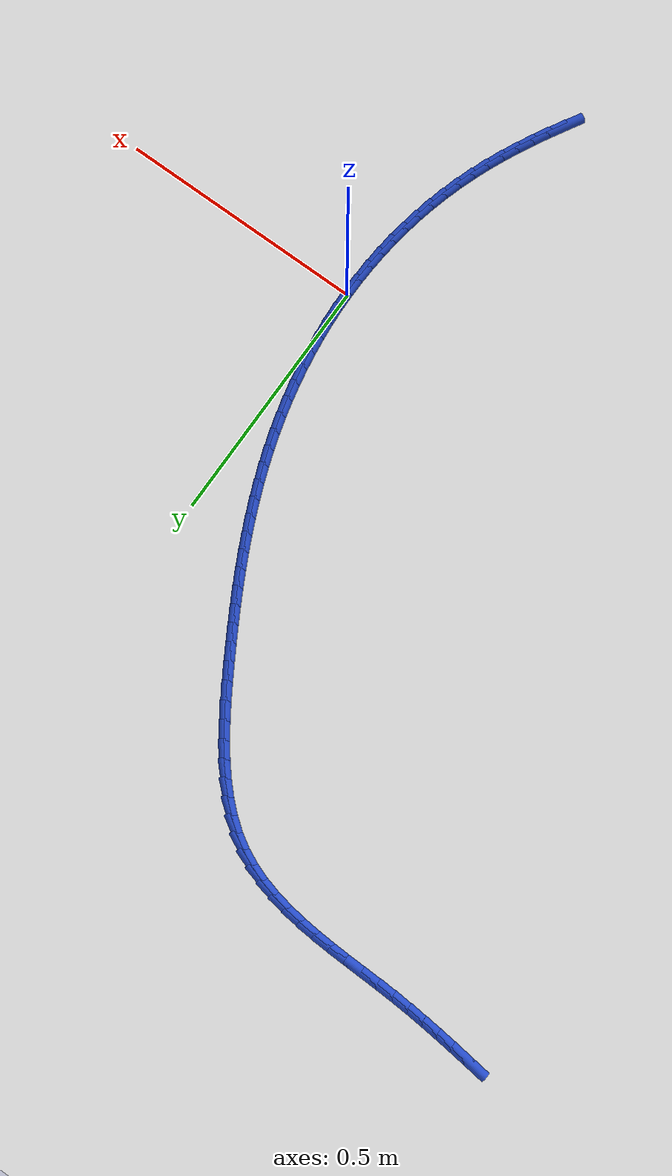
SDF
<sdf version="1.6">
 <world name="default">
  <model name="ground_plane">
   <static>1</static>
   <link name="link">
    <collision name="collision">
     <geometry><plane><normal>0 0 1</normal><size>100 100</size></plane></geometry>
     <surface><friction><ode><mu>100</mu><mu2>50</mu2></ode></friction></surface>
    </collision>
    <visual name="visual">
     <cast_shadows>0</cast_shadows>
     <geometry><plane><normal>0 0 1</normal><size>100 100</size></plane></geometry>
     <material>
      <script><uri>file://media/materials/scripts/gazebo.material</uri><name>Gazebo/WhiteGlow</name></script>
     </material>
    </visual>
   </link>
  </model>
  <model name="line">
   <link name="link_0">
    <pose>3.122502256758253e-17 1.3877787807814457e-17 0.01 0 1.57 -1.545253485342555</pose>
    <collision name="collision">
     <geometry><cylinder><radius>0.01</radius><length>0.08</length></cylinder></geometry>
    </collision>
    <visual name="visual">
     <material>
      <script><name>Gazebo/Blue</name><uri>file://media/materials/scripts/gazebo.material</uri></script>
     </material>
     <geometry><cylinder><radius>0.01</radius><length>0.08</length></cylinder></geometry>
    </visual>
   </link>
   <link name="link_1">
    <pose>-0.000865920485348824 0.03389333795629715 0.01 0 1.57 -1.5114779695106455</pose>
    <collision name="collision">
     <geometry><cylinder><radius>0.01</radius><length>0.08</length></cylinder></geometry>
    </collision>
    <visual name="visual">
     <material>
      <script><name>Gazebo/Blue</name><uri>file://media/materials/scripts/gazebo.material</uri></script>
     </material>
     <geometry><cylinder><radius>0.01</radius><length>0.08</length></cylinder></geometry>
    </visual>
   </link>
   <link name="link_2">
    <pose>-0.002876116298317968 0.06774183974791337 0.01 0 1.57 -1.4786294431413702</pose>
    <collision name="collision">
     <geometry><cylinder><radius>0.01</radius><length>0.08</length></cylinder></geometry>
    </collision>
    <visual name="visual">
     <material>
      <script><name>Gazebo/Blue</name><uri>file://media/materials/scripts/gazebo.material</uri></script>
     </material>
     <geometry><cylinder><radius>0.01</radius><length>0.08</length></cylinder></geometry>
    </visual>
   </link>
   <link name="link_3">
    <pose>-0.005996338600805709 0.10149997519014346 0.01 0 1.57 -1.4466398844303219</pose>
    <collision name="collision">
     <geometry><cylinder><radius>0.01</radius><length>0.08</length></cylinder></geometry>
    </collision>
    <visual name="visual">
     <material>
      <script><name>Gazebo/Blue</name><uri>file://media/materials/scripts/gazebo.material</uri></script>
     </material>
     <geometry><cylinder><radius>0.01</radius><length>0.08</length></cylinder></geometry>
    </visual>
   </link>
   <link name="link_4">
    <pose>-0.010192338554710334 0.13512221409828223 0.01 0 1.57 -1.4154375836928796</pose>
    <collision name="collision">
     <geometry><cylinder><radius>0.01</radius><length>0.08</length></cylinder></geometry>
    </collision>
    <visual name="visual">
     <material>
      <script><name>Gazebo/Blue</name><uri>file://media/materials/scripts/gazebo.material</uri></script>
     </material>
     <geometry><cylinder><radius>0.01</radius><length>0.08</length></cylinder></geometry>
    </visual>
   </link>
   <link name="link_5">
    <pose>-0.015429867321930139 0.16856302628762446 0.01 0 1.57 -1.3849478388736798</pose>
    <collision name="collision">
     <geometry><cylinder><radius>0.01</radius><length>0.08</length></cylinder></geometry>
    </collision>
    <visual name="visual">
     <material>
      <script><name>Gazebo/Blue</name><uri>file://media/materials/scripts/gazebo.material</uri></script>
     </material>
     <geometry><cylinder><radius>0.01</radius><length>0.08</length></cylinder></geometry>
    </visual>
   </link>
   <link name="link_6">
    <pose>-0.021674676064363414 0.20177688157346502 0.01 0 1.57 -1.355093450607874</pose>
    <collision name="collision">
     <geometry><cylinder><radius>0.01</radius><length>0.08</length></cylinder></geometry>
    </collision>
    <visual name="visual">
     <material>
      <script><name>Gazebo/Blue</name><uri>file://media/materials/scripts/gazebo.material</uri></script>
     </material>
     <geometry><cylinder><radius>0.01</radius><length>0.08</length></cylinder></geometry>
    </visual>
   </link>
   <link name="link_7">
    <pose>-0.028892515943908466 0.23471824977109862 0.01 0 1.57 -1.3257950326625307</pose>
    <collision name="collision">
     <geometry><cylinder><radius>0.01</radius><length>0.08</length></cylinder></geometry>
    </collision>
    <visual name="visual">
     <material>
      <script><name>Gazebo/Blue</name><uri>file://media/materials/scripts/gazebo.material</uri></script>
     </material>
     <geometry><cylinder><radius>0.01</radius><length>0.08</length></cylinder></geometry>
    </visual>
   </link>
   <link name="link_8">
    <pose>-0.03704913812246359 0.26734160069582014 0.01 0 1.57 -1.2969711532674613</pose>
    <collision name="collision">
     <geometry><cylinder><radius>0.01</radius><length>0.08</length></cylinder></geometry>
    </collision>
    <visual name="visual">
     <material>
      <script><name>Gazebo/Blue</name><uri>file://media/materials/scripts/gazebo.material</uri></script>
     </material>
     <geometry><cylinder><radius>0.01</radius><length>0.08</length></cylinder></geometry>
    </visual>
   </link>
   <link name="link_9">
    <pose>-0.046110293761927074 0.2996014041629243 0.01 0 1.57 -1.2685850275636994</pose>
    <collision name="collision">
     <geometry><cylinder><radius>0.01</radius><length>0.08</length></cylinder></geometry>
    </collision>
    <visual name="visual">
     <material>
      <script><name>Gazebo/Blue</name><uri>file://media/materials/scripts/gazebo.material</uri></script>
     </material>
     <geometry><cylinder><radius>0.01</radius><length>0.08</length></cylinder></geometry>
    </visual>
   </link>
   <link name="link_10">
    <pose>-0.05604174847999134 0.33145741190993566 0.01 0 1.57 -1.2410812943710086</pose>
    <collision name="collision">
     <geometry><cylinder><radius>0.01</radius><length>0.08</length></cylinder></geometry>
    </collision>
    <visual name="visual">
     <material>
      <script><name>Gazebo/Blue</name><uri>file://media/materials/scripts/gazebo.material</uri></script>
     </material>
     <geometry><cylinder><radius>0.01</radius><length>0.08</length></cylinder></geometry>
    </visual>
   </link>
   <link name="link_11">
    <pose>-0.06680941415166988 0.3629228158236591 0.01 0 1.57 -1.214839223027288</pose>
    <collision name="collision">
     <geometry><cylinder><radius>0.01</radius><length>0.08</length></cylinder></geometry>
    </collision>
    <visual name="visual">
     <material>
      <script><name>Gazebo/Blue</name><uri>file://media/materials/scripts/gazebo.material</uri></script>
     </material>
     <geometry><cylinder><radius>0.01</radius><length>0.08</length></cylinder></geometry>
    </visual>
   </link>
   <link name="link_12">
    <pose>-0.078379287599311 0.39404184622518174 0.01 0 1.57 -1.189977491767885</pose>
    <collision name="collision">
     <geometry><cylinder><radius>0.01</radius><length>0.08</length></cylinder></geometry>
    </collision>
    <visual name="visual">
     <material>
      <script><name>Gazebo/Blue</name><uri>file://media/materials/scripts/gazebo.material</uri></script>
     </material>
     <geometry><cylinder><radius>0.01</radius><length>0.08</length></cylinder></geometry>
    </visual>
   </link>
   <link name="link_13">
    <pose>-0.09071736669249278 0.42485911607708055 0.01 0 1.57 -1.1665934481925826</pose>
    <collision name="collision">
     <geometry><cylinder><radius>0.01</radius><length>0.08</length></cylinder></geometry>
    </collision>
    <visual name="visual">
     <material>
      <script><name>Gazebo/Blue</name><uri>file://media/materials/scripts/gazebo.material</uri></script>
     </material>
     <geometry><cylinder><radius>0.01</radius><length>0.08</length></cylinder></geometry>
    </visual>
   </link>
   <link name="link_14">
    <pose>-0.10378964930079335 0.45541923834193215 0.01 0 1.57 -1.1447663570972086</pose>
    <collision name="collision">
     <geometry><cylinder><radius>0.01</radius><length>0.08</length></cylinder></geometry>
    </collision>
    <visual name="visual">
     <material>
      <script><name>Gazebo/Blue</name><uri>file://media/materials/scripts/gazebo.material</uri></script>
     </material>
     <geometry><cylinder><radius>0.01</radius><length>0.08</length></cylinder></geometry>
    </visual>
   </link>
   <link name="link_15">
    <pose>-0.11756213329379074 0.48576682598231335 0.01 0 1.57 -1.1245578417099682</pose>
    <collision name="collision">
     <geometry><cylinder><radius>0.01</radius><length>0.08</length></cylinder></geometry>
    </collision>
    <visual name="visual">
     <material>
      <script><name>Gazebo/Blue</name><uri>file://media/materials/scripts/gazebo.material</uri></script>
     </material>
     <geometry><cylinder><radius>0.01</radius><length>0.08</length></cylinder></geometry>
    </visual>
   </link>
   <link name="link_16">
    <pose>-0.1320008165410631 0.515946491960801 0.01 0 1.57 -1.1060127861267237</pose>
    <collision name="collision">
     <geometry><cylinder><radius>0.01</radius><length>0.08</length></cylinder></geometry>
    </collision>
    <visual name="visual">
     <material>
      <script><name>Gazebo/Blue</name><uri>file://media/materials/scripts/gazebo.material</uri></script>
     </material>
     <geometry><cylinder><radius>0.01</radius><length>0.08</length></cylinder></geometry>
    </visual>
   </link>
   <link name="link_17">
    <pose>-0.14707169691218863 0.546002849239972 0.01 0 1.57 -1.0891605754471807</pose>
    <collision name="collision">
     <geometry><cylinder><radius>0.01</radius><length>0.08</length></cylinder></geometry>
    </collision>
    <visual name="visual">
     <material>
      <script><name>Gazebo/Blue</name><uri>file://media/materials/scripts/gazebo.material</uri></script>
     </material>
     <geometry><cylinder><radius>0.01</radius><length>0.08</length></cylinder></geometry>
    </visual>
   </link>
   <link name="link_18">
    <pose>-0.16274077227674524 0.5759805107824028 0.01 0 1.57 -1.074016553728089</pose>
    <collision name="collision">
     <geometry><cylinder><radius>0.01</radius><length>0.08</length></cylinder></geometry>
    </collision>
    <visual name="visual">
     <material>
      <script><name>Gazebo/Blue</name><uri>file://media/materials/scripts/gazebo.material</uri></script>
     </material>
     <geometry><cylinder><radius>0.01</radius><length>0.08</length></cylinder></geometry>
    </visual>
   </link>
   <link name="link_19">
    <pose>-0.17897404050431126 0.6059240895506708 0.01 0 1.57 -1.0605835921100564</pose>
    <collision name="collision">
     <geometry><cylinder><radius>0.01</radius><length>0.08</length></cylinder></geometry>
    </collision>
    <visual name="visual">
     <material>
      <script><name>Gazebo/Blue</name><uri>file://media/materials/scripts/gazebo.material</uri></script>
     </material>
     <geometry><cylinder><radius>0.01</radius><length>0.08</length></cylinder></geometry>
    </visual>
   </link>
   <link name="link_20">
    <pose>-0.19573749946446461 0.6358781985073524 0.01 0 1.57 -1.0488536769395178</pose>
    <collision name="collision">
     <geometry><cylinder><radius>0.01</radius><length>0.08</length></cylinder></geometry>
    </collision>
    <visual name="visual">
     <material>
      <script><name>Gazebo/Blue</name><uri>file://media/materials/scripts/gazebo.material</uri></script>
     </material>
     <geometry><cylinder><radius>0.01</radius><length>0.08</length></cylinder></geometry>
    </visual>
   </link>
   <link name="link_21">
    <pose>-0.2129971470267834 0.6658874506150242 0.01 0 1.57 -1.038809447378384</pose>
    <collision name="collision">
     <geometry><cylinder><radius>0.01</radius><length>0.08</length></cylinder></geometry>
    </collision>
    <visual name="visual">
     <material>
      <script><name>Gazebo/Blue</name><uri>file://media/materials/scripts/gazebo.material</uri></script>
     </material>
     <geometry><cylinder><radius>0.01</radius><length>0.08</length></cylinder></geometry>
    </visual>
   </link>
   <link name="link_22">
    <pose>-0.2307189810608459 0.6959964588362635 0.01 0 1.57 -1.0293825329552073</pose>
    <collision name="collision">
     <geometry><cylinder><radius>0.01</radius><length>0.08</length></cylinder></geometry>
    </collision>
    <visual name="visual">
     <material>
      <script><name>Gazebo/Blue</name><uri>file://media/materials/scripts/gazebo.material</uri></script>
     </material>
     <geometry><cylinder><radius>0.01</radius><length>0.08</length></cylinder></geometry>
    </visual>
   </link>
   <link name="link_23">
    <pose>-0.24888639960591855 0.7262073617972887 0.01 0 1.57 -1.0143932947088314</pose>
    <collision name="collision">
     <geometry><cylinder><radius>0.01</radius><length>0.08</length></cylinder></geometry>
    </collision>
    <visual name="visual">
     <material>
      <script><name>Gazebo/Blue</name><uri>file://media/materials/scripts/gazebo.material</uri></script>
     </material>
     <geometry><cylinder><radius>0.01</radius><length>0.08</length></cylinder></geometry>
    </visual>
   </link>
   <link name="link_24">
    <pose>-0.26758524409550394 0.7562722307248411 0.01 0 1.57 -0.991416461137278</pose>
    <collision name="collision">
     <geometry><cylinder><radius>0.01</radius><length>0.08</length></cylinder></geometry>
    </collision>
    <visual name="visual">
     <material>
      <script><name>Gazebo/Blue</name><uri>file://media/materials/scripts/gazebo.material</uri></script>
     </material>
     <geometry><cylinder><radius>0.01</radius><length>0.08</length></cylinder></geometry>
    </visual>
   </link>
   <link name="link_25">
    <pose>-0.2869387212680915 0.7858519270149226 0.01 0 1.57 -0.960007470973449</pose>
    <collision name="collision">
     <geometry><cylinder><radius>0.01</radius><length>0.08</length></cylinder></geometry>
    </collision>
    <visual name="visual">
     <material>
      <script><name>Gazebo/Blue</name><uri>file://media/materials/scripts/gazebo.material</uri></script>
     </material>
     <geometry><cylinder><radius>0.01</radius><length>0.08</length></cylinder></geometry>
    </visual>
   </link>
   <link name="link_26">
    <pose>-0.30707009237589394 0.8146071789939 0.01 0 1.57 -0.9194810791921506</pose>
    <collision name="collision">
     <geometry><cylinder><radius>0.01</radius><length>0.08</length></cylinder></geometry>
    </collision>
    <visual name="visual">
     <material>
      <script><name>Gazebo/Blue</name><uri>file://media/materials/scripts/gazebo.material</uri></script>
     </material>
     <geometry><cylinder><radius>0.01</radius><length>0.08</length></cylinder></geometry>
    </visual>
   </link>
   <link name="link_27">
    <pose>-0.328102618671124 0.8421987149881404 0.01 0 1.57 -0.8689412261048902</pose>
    <collision name="collision">
     <geometry><cylinder><radius>0.01</radius><length>0.08</length></cylinder></geometry>
    </collision>
    <visual name="visual">
     <material>
      <script><name>Gazebo/Blue</name><uri>file://media/materials/scripts/gazebo.material</uri></script>
     </material>
     <geometry><cylinder><radius>0.01</radius><length>0.08</length></cylinder></geometry>
    </visual>
   </link>
   <link name="link_28">
    <pose>-0.35015956140599436 0.8682872633240108 0.01 0 1.57 -0.8073471904289259</pose>
    <collision name="collision">
     <geometry><cylinder><radius>0.01</radius><length>0.08</length></cylinder></geometry>
    </collision>
    <visual name="visual">
     <material>
      <script><name>Gazebo/Blue</name><uri>file://media/materials/scripts/gazebo.material</uri></script>
     </material>
     <geometry><cylinder><radius>0.01</radius><length>0.08</length></cylinder></geometry>
    </visual>
   </link>
   <link name="link_29">
    <pose>-0.3733641818327177 0.892533552327878 0.01 0 1.57 -0.7336441424200234</pose>
    <collision name="collision">
     <geometry><cylinder><radius>0.01</radius><length>0.08</length></cylinder></geometry>
    </collision>
    <visual name="visual">
     <material>
      <script><name>Gazebo/Blue</name><uri>file://media/materials/scripts/gazebo.material</uri></script>
     </material>
     <geometry><cylinder><radius>0.01</radius><length>0.08</length></cylinder></geometry>
    </visual>
   </link>
   <link name="link_30">
    <pose>-0.3978397412035066 0.9145983103261094 0.01 0 1.57 -0.6469958784442206</pose>
    <collision name="collision">
     <geometry><cylinder><radius>0.01</radius><length>0.08</length></cylinder></geometry>
    </collision>
    <visual name="visual">
     <material>
      <script><name>Gazebo/Blue</name><uri>file://media/materials/scripts/gazebo.material</uri></script>
     </material>
     <geometry><cylinder><radius>0.01</radius><length>0.08</length></cylinder></geometry>
    </visual>
   </link>
   <link name="link_31">
    <pose>-0.4237095007705741 0.9341422656450717 0.01 0 1.57 -0.5471457314248681</pose>
    <collision name="collision">
     <geometry><cylinder><radius>0.01</radius><length>0.08</length></cylinder></geometry>
    </collision>
    <visual name="visual">
     <material>
      <script><name>Gazebo/Blue</name><uri>file://media/materials/scripts/gazebo.material</uri></script>
     </material>
     <geometry><cylinder><radius>0.01</radius><length>0.08</length></cylinder></geometry>
    </visual>
   </link>
   <link name="link_32">
    <pose>-0.45109672178613264 0.9508261466111319 0.01 0 1.57 -0.438390828728084</pose>
    <collision name="collision">
     <geometry><cylinder><radius>0.01</radius><length>0.08</length></cylinder></geometry>
    </collision>
    <visual name="visual">
     <material>
      <script><name>Gazebo/Blue</name><uri>file://media/materials/scripts/gazebo.material</uri></script>
     </material>
     <geometry><cylinder><radius>0.01</radius><length>0.08</length></cylinder></geometry>
    </visual>
   </link>
   <link name="link_33">
    <pose>-0.48007790197268224 0.9644129932289268 0.01 0 1.57 -0.33855191756990594</pose>
    <collision name="collision">
     <geometry><cylinder><radius>0.01</radius><length>0.08</length></cylinder></geometry>
    </collision>
    <visual name="visual">
     <material>
      <script><name>Gazebo/Blue</name><uri>file://media/materials/scripts/gazebo.material</uri></script>
     </material>
     <geometry><cylinder><radius>0.01</radius><length>0.08</length></cylinder></geometry>
    </visual>
   </link>
   <link name="link_34">
    <pose>-0.5105169973305816 0.9751308553179726 0.01 0 1.57 -0.25338710884146065</pose>
    <collision name="collision">
     <geometry><cylinder><radius>0.01</radius><length>0.08</length></cylinder></geometry>
    </collision>
    <visual name="visual">
     <material>
      <script><name>Gazebo/Blue</name><uri>file://media/materials/scripts/gazebo.material</uri></script>
     </material>
     <geometry><cylinder><radius>0.01</radius><length>0.08</length></cylinder></geometry>
    </visual>
   </link>
   <link name="link_35">
    <pose>-0.5422176115466872 0.9833398246227556 0.01 0 1.57 -0.18288799391079796</pose>
    <collision name="collision">
     <geometry><cylinder><radius>0.01</radius><length>0.08</length></cylinder></geometry>
    </collision>
    <visual name="visual">
     <material>
      <script><name>Gazebo/Blue</name><uri>file://media/materials/scripts/gazebo.material</uri></script>
     </material>
     <geometry><cylinder><radius>0.01</radius><length>0.08</length></cylinder></geometry>
    </visual>
   </link>
   <link name="link_36">
    <pose>-0.5749833442077475 0.9894000018581951 0.01 0 1.57 -0.12632112361747572</pose>
    <collision name="collision">
     <geometry><cylinder><radius>0.01</radius><length>0.08</length></cylinder></geometry>
    </collision>
    <visual name="visual">
     <material>
      <script><name>Gazebo/Blue</name><uri>file://media/materials/scripts/gazebo.material</uri></script>
     </material>
     <geometry><cylinder><radius>0.01</radius><length>0.08</length></cylinder></geometry>
    </visual>
   </link>
   <link name="link_37">
    <pose>-0.6086177949005109 0.9936714877392103 0.01 0 1.57 -0.08267798887693112</pose>
    <collision name="collision">
     <geometry><cylinder><radius>0.01</radius><length>0.08</length></cylinder></geometry>
    </collision>
    <visual name="visual">
     <material>
      <script><name>Gazebo/Blue</name><uri>file://media/materials/scripts/gazebo.material</uri></script>
     </material>
     <geometry><cylinder><radius>0.01</radius><length>0.08</length></cylinder></geometry>
    </visual>
   </link>
   <link name="link_38">
    <pose>-0.6429245632117258 0.9965143829807198 0.01 0 1.57 -0.050969855635384434</pose>
    <collision name="collision">
     <geometry><cylinder><radius>0.01</radius><length>0.08</length></cylinder></geometry>
    </collision>
    <visual name="visual">
     <material>
      <script><name>Gazebo/Blue</name><uri>file://media/materials/scripts/gazebo.material</uri></script>
     </material>
     <geometry><cylinder><radius>0.01</radius><length>0.08</length></cylinder></geometry>
    </visual>
   </link>
   <link name="link_39">
    <pose>-0.67770724872814 0.9982887882976427 0.01 0 1.57 -0.030394206644511312</pose>
    <collision name="collision">
     <geometry><cylinder><radius>0.01</radius><length>0.08</length></cylinder></geometry>
    </collision>
    <visual name="visual">
     <material>
      <script><name>Gazebo/Blue</name><uri>file://media/materials/scripts/gazebo.material</uri></script>
     </material>
     <geometry><cylinder><radius>0.01</radius><length>0.08</length></cylinder></geometry>
    </visual>
   </link>
   <link name="link_40">
    <pose>-0.7127694510365022 0.9993548044048974 0.01 0 1.57 -0.020418874804474532</pose>
    <collision name="collision">
     <geometry><cylinder><radius>0.01</radius><length>0.08</length></cylinder></geometry>
    </collision>
    <visual name="visual">
     <material>
      <script><name>Gazebo/Blue</name><uri>file://media/materials/scripts/gazebo.material</uri></script>
     </material>
     <geometry><cylinder><radius>0.01</radius><length>0.08</length></cylinder></geometry>
    </visual>
   </link>
   <link name="link_41">
    <pose>-0.7479147697235604 1.0000725320174029 0.01 0 1.57 -0.020821925005947522</pose>
    <collision name="collision">
     <geometry><cylinder><radius>0.01</radius><length>0.08</length></cylinder></geometry>
    </collision>
    <visual name="visual">
     <material>
      <script><name>Gazebo/Blue</name><uri>file://media/materials/scripts/gazebo.material</uri></script>
     </material>
     <geometry><cylinder><radius>0.01</radius><length>0.08</length></cylinder></geometry>
    </visual>
   </link>
   <link name="link_42">
    <pose>-0.7829468043760627 1.000802071850078 0.01 0 1.57 -0.03171108902651052</pose>
    <collision name="collision">
     <geometry><cylinder><radius>0.01</radius><length>0.08</length></cylinder></geometry>
    </collision>
    <visual name="visual">
     <material>
      <script><name>Gazebo/Blue</name><uri>file://media/materials/scripts/gazebo.material</uri></script>
     </material>
     <geometry><cylinder><radius>0.01</radius><length>0.08</length></cylinder></geometry>
    </visual>
   </link>
   <link name="link_43">
    <pose>-0.8176691545807574 1.0019035246178416 0.01 0 1.57 -0.05137869679514244</pose>
    <collision name="collision">
     <geometry><cylinder><radius>0.01</radius><length>0.08</length></cylinder></geometry>
    </collision>
    <visual name="visual">
     <material>
      <script><name>Gazebo/Blue</name><uri>file://media/materials/scripts/gazebo.material</uri></script>
     </material>
     <geometry><cylinder><radius>0.01</radius><length>0.08</length></cylinder></geometry>
    </visual>
   </link>
   <link name="link_44">
    <pose>-0.8519303172179651 1.0036653690660475 0.01 0 1.57 -0.07068711061122268</pose>
    <collision name="collision">
     <geometry><cylinder><radius>0.01</radius><length>0.08</length></cylinder></geometry>
    </collision>
    <visual name="visual">
     <material>
      <script><name>Gazebo/Blue</name><uri>file://media/materials/scripts/gazebo.material</uri></script>
     </material>
     <geometry><cylinder><radius>0.01</radius><length>0.08</length></cylinder></geometry>
    </visual>
   </link>
   <link name="link_45">
    <pose>-0.8857758018963304 1.0060618013071914 0.01 0 1.57 -0.08684018985515787</pose>
    <collision name="collision">
     <geometry><cylinder><radius>0.01</radius><length>0.08</length></cylinder></geometry>
    </collision>
    <visual name="visual">
     <material>
      <script><name>Gazebo/Blue</name><uri>file://media/materials/scripts/gazebo.material</uri></script>
     </material>
     <geometry><cylinder><radius>0.01</radius><length>0.08</length></cylinder></geometry>
    </visual>
   </link>
   <link name="link_46">
    <pose>-0.9193051417613309 1.0089808369336768 0.01 0 1.57 -0.09962048377111418</pose>
    <collision name="collision">
     <geometry><cylinder><radius>0.01</radius><length>0.08</length></cylinder></geometry>
    </collision>
    <visual name="visual">
     <material>
      <script><name>Gazebo/Blue</name><uri>file://media/materials/scripts/gazebo.material</uri></script>
     </material>
     <geometry><cylinder><radius>0.01</radius><length>0.08</length></cylinder></geometry>
    </visual>
   </link>
   <link name="link_47">
    <pose>-0.9526178714063661 1.0123104892281218 0.01 0 1.57 -0.10886776145703458</pose>
    <collision name="collision">
     <geometry><cylinder><radius>0.01</radius><length>0.08</length></cylinder></geometry>
    </collision>
    <visual name="visual">
     <material>
      <script><name>Gazebo/Blue</name><uri>file://media/materials/scripts/gazebo.material</uri></script>
     </material>
     <geometry><cylinder><radius>0.01</radius><length>0.08</length></cylinder></geometry>
    </visual>
   </link>
   <link name="link_48">
    <pose>-0.9858135254248359 1.0159387714731445 0.01 0 1.57 -0.11448044236311579</pose>
    <collision name="collision">
     <geometry><cylinder><radius>0.01</radius><length>0.08</length></cylinder></geometry>
    </collision>
    <visual name="visual">
     <material>
      <script><name>Gazebo/Blue</name><uri>file://media/materials/scripts/gazebo.material</uri></script>
     </material>
     <geometry><cylinder><radius>0.01</radius><length>0.08</length></cylinder></geometry>
    </visual>
   </link>
   <link name="link_184">
    <pose>-0.1449594252388631 -0.5138000375106087 0.01 0 1.57 1.0520138667509693</pose>
    <collision name="collision">
     <geometry><cylinder><radius>0.01</radius><length>0.08</length></cylinder></geometry>
    </collision>
    <visual name="visual">
     <material>
      <script><name>Gazebo/Blue</name><uri>file://media/materials/scripts/gazebo.material</uri></script>
     </material>
     <geometry><cylinder><radius>0.01</radius><length>0.08</length></cylinder></geometry>
    </visual>
   </link>
   <link name="link_185">
    <pose>-0.12820867207765388 -0.4844614570739878 0.01 0 1.57 1.076465213848118</pose>
    <collision name="collision">
     <geometry><cylinder><radius>0.01</radius><length>0.08</length></cylinder></geometry>
    </collision>
    <visual name="visual">
     <material>
      <script><name>Gazebo/Blue</name><uri>file://media/materials/scripts/gazebo.material</uri></script>
     </material>
     <geometry><cylinder><radius>0.01</radius><length>0.08</length></cylinder></geometry>
    </visual>
   </link>
   <link name="link_186">
    <pose>-0.11216940746182368 -0.4547020427395616 0.01 0 1.57 1.1032387908475336</pose>
    <collision name="collision">
     <geometry><cylinder><radius>0.01</radius><length>0.08</length></cylinder></geometry>
    </collision>
    <visual name="visual">
     <material>
      <script><name>Gazebo/Blue</name><uri>file://media/materials/scripts/gazebo.material</uri></script>
     </material>
     <geometry><cylinder><radius>0.01</radius><length>0.08</length></cylinder></geometry>
    </visual>
   </link>
   <link name="link_187">
    <pose>-0.0969315910235222 -0.424521993692344 0.01 0 1.57 1.1323946239924467</pose>
    <collision name="collision">
     <geometry><cylinder><radius>0.01</radius><length>0.08</length></cylinder></geometry>
    </collision>
    <visual name="visual">
     <material>
      <script><name>Gazebo/Blue</name><uri>file://media/materials/scripts/gazebo.material</uri></script>
     </material>
     <geometry><cylinder><radius>0.01</radius><length>0.08</length></cylinder></geometry>
    </visual>
   </link>
   <link name="link_188">
    <pose>-0.08258518239489915 -0.3939215091173484 0.01 0 1.57 1.163987557830691</pose>
    <collision name="collision">
     <geometry><cylinder><radius>0.01</radius><length>0.08</length></cylinder></geometry>
    </collision>
    <visual name="visual">
     <material>
      <script><name>Gazebo/Blue</name><uri>file://media/materials/scripts/gazebo.material</uri></script>
     </material>
     <geometry><cylinder><radius>0.01</radius><length>0.08</length></cylinder></geometry>
    </visual>
   </link>
   <link name="link_189">
    <pose>-0.06922014120810417 -0.36290078819958843 0.01 0 1.57 1.1980621465304042</pose>
    <collision name="collision">
     <geometry><cylinder><radius>0.01</radius><length>0.08</length></cylinder></geometry>
    </collision>
    <visual name="visual">
     <material>
      <script><name>Gazebo/Blue</name><uri>file://media/materials/scripts/gazebo.material</uri></script>
     </material>
     <geometry><cylinder><radius>0.01</radius><length>0.08</length></cylinder></geometry>
    </visual>
   </link>
   <link name="link_190">
    <pose>-0.05692642709528696 -0.3314600301240778 0.01 0 1.57 1.2346336195008554</pose>
    <collision name="collision">
     <geometry><cylinder><radius>0.01</radius><length>0.08</length></cylinder></geometry>
    </collision>
    <visual name="visual">
     <material>
      <script><name>Gazebo/Blue</name><uri>file://media/materials/scripts/gazebo.material</uri></script>
     </material>
     <geometry><cylinder><radius>0.01</radius><length>0.08</length></cylinder></geometry>
    </visual>
   </link>
   <link name="link_191">
    <pose>-0.04579359670097381 -0.2995996245959706 0.01 0 1.57 1.2726476728424705</pose>
    <collision name="collision">
     <geometry><cylinder><radius>0.01</radius><length>0.08</length></cylinder></geometry>
    </collision>
    <visual name="visual">
     <material>
      <script><name>Gazebo/Blue</name><uri>file://media/materials/scripts/gazebo.material</uri></script>
     </material>
     <geometry><cylinder><radius>0.01</radius><length>0.08</length></cylinder></geometry>
    </visual>
   </link>
   <link name="link_192">
    <pose>-0.035878517833789085 -0.26733541559556534 0.01 0 1.57 1.3102914648794122</pose>
    <collision name="collision">
     <geometry><cylinder><radius>0.01</radius><length>0.08</length></cylinder></geometry>
    </collision>
    <visual name="visual">
     <material>
      <script><name>Gazebo/Blue</name><uri>file://media/materials/scripts/gazebo.material</uri></script>
     </material>
     <geometry><cylinder><radius>0.01</radius><length>0.08</length></cylinder></geometry>
    </visual>
   </link>
   <link name="link_193">
    <pose>-0.027181776588706463 -0.2347098553644903 0.01 0 1.57 1.347417844269232</pose>
    <collision name="collision">
     <geometry><cylinder><radius>0.01</radius><length>0.08</length></cylinder></geometry>
    </collision>
    <visual name="visual">
     <material>
      <script><name>Gazebo/Blue</name><uri>file://media/materials/scripts/gazebo.material</uri></script>
     </material>
     <geometry><cylinder><radius>0.01</radius><length>0.08</length></cylinder></geometry>
    </visual>
   </link>
   <link name="link_194">
    <pose>-0.019698396283678643 -0.20176802605407665 0.01 0 1.57 1.3840655313334183</pose>
    <collision name="collision">
     <geometry><cylinder><radius>0.01</radius><length>0.08</length></cylinder></geometry>
    </collision>
    <visual name="visual">
     <material>
      <script><name>Gazebo/Blue</name><uri>file://media/materials/scripts/gazebo.material</uri></script>
     </material>
     <geometry><cylinder><radius>0.01</radius><length>0.08</length></cylinder></geometry>
    </visual>
   </link>
   <link name="link_195">
    <pose>-0.013423400236658058 -0.1685550098156551 0.01 0 1.57 1.4202771248359054</pose>
    <collision name="collision">
     <geometry><cylinder><radius>0.01</radius><length>0.08</length></cylinder></geometry>
    </collision>
    <visual name="visual">
     <material>
      <script><name>Gazebo/Blue</name><uri>file://media/materials/scripts/gazebo.material</uri></script>
     </material>
     <geometry><cylinder><radius>0.01</radius><length>0.08</length></cylinder></geometry>
    </visual>
   </link>
   <link name="link_196">
    <pose>-0.00835181176559719 -0.13511588880055628 0.01 0 1.57 1.4560984796371228</pose>
    <collision name="collision">
     <geometry><cylinder><radius>0.01</radius><length>0.08</length></cylinder></geometry>
    </collision>
    <visual name="visual">
     <material>
      <script><name>Gazebo/Blue</name><uri>file://media/materials/scripts/gazebo.material</uri></script>
     </material>
     <geometry><cylinder><radius>0.01</radius><length>0.08</length></cylinder></geometry>
    </visual>
   </link>
   <link name="link_197">
    <pose>-0.004478654188448488 -0.10149574516011073 0.01 0 1.57 1.491578147959722</pose>
    <collision name="collision">
     <geometry><cylinder><radius>0.01</radius><length>0.08</length></cylinder></geometry>
    </collision>
    <visual name="visual">
     <material>
      <script><name>Gazebo/Blue</name><uri>file://media/materials/scripts/gazebo.material</uri></script>
     </material>
     <geometry><cylinder><radius>0.01</radius><length>0.08</length></cylinder></geometry>
    </visual>
   </link>
   <link name="link_198">
    <pose>-0.00179895082316441 -0.06773966104564912 0.01 0 1.57 1.5267668819636973</pose>
    <collision name="collision">
     <geometry><cylinder><radius>0.01</radius><length>0.08</length></cylinder></geometry>
    </collision>
    <visual name="visual">
     <material>
      <script><name>Gazebo/Blue</name><uri>file://media/materials/scripts/gazebo.material</uri></script>
     </material>
     <geometry><cylinder><radius>0.01</radius><length>0.08</length></cylinder></geometry>
    </visual>
   </link>
   <link name="link_199">
    <pose>-0.00030772498769741485 -0.03389271860850197 0.01 0 1.57 1.5617171928405076</pose>
    <collision name="collision">
     <geometry><cylinder><radius>0.01</radius><length>0.08</length></cylinder></geometry>
    </collision>
    <visual name="visual">
     <material>
      <script><name>Gazebo/Blue</name><uri>file://media/materials/scripts/gazebo.material</uri></script>
     </material>
     <geometry><cylinder><radius>0.01</radius><length>0.08</length></cylinder></geometry>
    </visual>
   </link>
   <link name="link_200">
    <pose>3.8163916471489756e-17 2.0816681711721685e-17 0.01 0 1.57 -1.5451096938060096</pose>
    <collision name="collision">
     <geometry><cylinder><radius>0.01</radius><length>0.08</length></cylinder></geometry>
    </collision>
    <visual name="visual">
     <material>
      <script><name>Gazebo/Blue</name><uri>file://media/materials/scripts/gazebo.material</uri></script>
     </material>
     <geometry><cylinder><radius>0.01</radius><length>0.08</length></cylinder></geometry>
    </visual>
   </link>
   <link name="link_201">
    <pose>-0.0008707991780245432 0.033893412628527055 0.01 0 1.57 -1.5451096938060098</pose>
    <collision name="collision">
     <geometry><cylinder><radius>0.01</radius><length>0.08</length></cylinder></geometry>
    </collision>
    <visual name="visual">
     <material>
      <script><name>Gazebo/Blue</name><uri>file://media/materials/scripts/gazebo.material</uri></script>
     </material>
     <geometry><cylinder><radius>0.01</radius><length>0.08</length></cylinder></geometry>
    </visual>
   </link>
  </model>
 </world>
</sdf>
